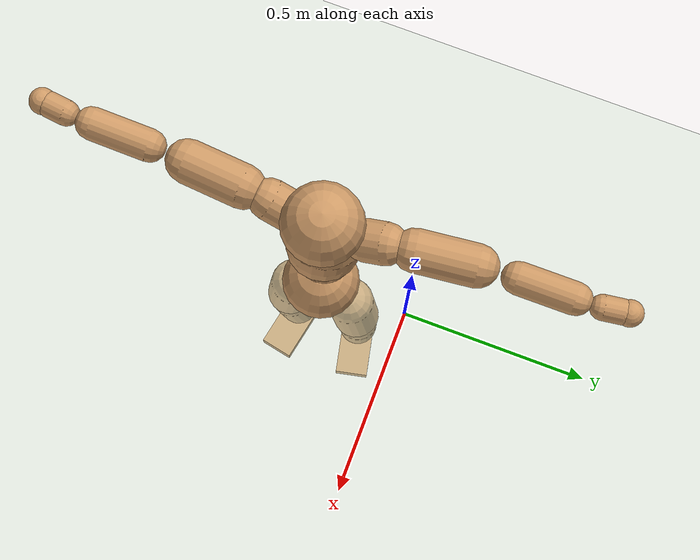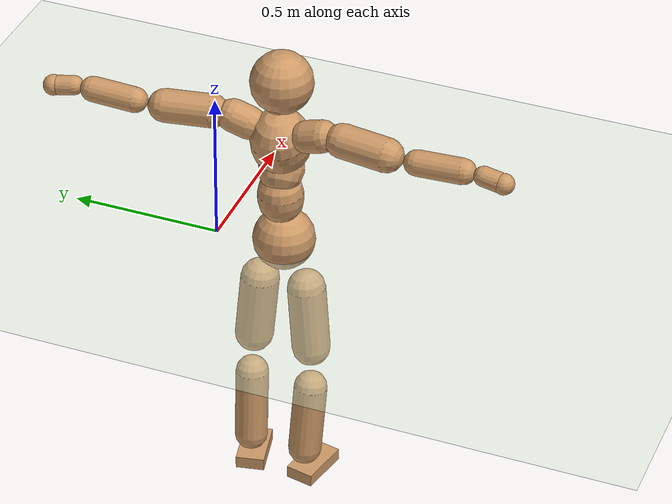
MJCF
<mujoco model="humanoid">
  <compiler coordinate="local"/>
  <default>
    <joint damping="0.0" armature="0.01" stiffness="0.0" limited="true"/>
    <geom conaffinity="1" condim="3" contype="7" margin="0.001" rgba="0.8 0.6 .4 1"/>
  </default>
  <asset>
    <texture type="skybox" builtin="gradient" rgb1=".4 .5 .6" rgb2="0 0 0" width="100" height="100"/>
    <texture builtin="flat" height="1278" mark="cross" markrgb="1 1 1" name="texgeom" random="0.01" rgb1="0.8 0.6 0.4" rgb2="0.8 0.6 0.4" type="cube" width="127"/>
    <texture builtin="checker" height="100" name="texplane" rgb1="0 0 0" rgb2="0.8 0.8 0.8" type="2d" width="100"/>
    <material name="MatPlane" reflectance="0.5" shininess="1" specular="1" texrepeat="60 60" texture="texplane"/>
    <material name="geom" texture="texgeom" texuniform="true"/>
  </asset>
  <worldbody>
    <light cutoff="100" diffuse="1 1 1" dir="-0 0 -1.3" directional="true" exponent="1" pos="0 0 1.3" specular=".1 .1 .1"/>
    <geom conaffinity="1" condim="3" name="floor" pos="0 0 0" rgba="0.8 0.9 0.8 1" size="100 100 .2" type="plane" material="MatPlane"/>
    <body name="Pelvis" pos="-0.0009 -0.2362 0.0377">
      <freejoint name="Pelvis"/>
      <geom type="sphere" contype="1" conaffinity="1" density="500" size="0.1028" pos="0.0000 0.0000 0.0000" name="Pelvis"/>
      <body name="L_Hip" pos="-0.0031 0.0757 -0.0974">
        <joint name="L_Hip_x" type="hinge" pos="0 0 0" axis="1 0 0" stiffness="800" damping="80" armature="0.02" range="-180.0000 180.0000"/>
        <joint name="L_Hip_y" type="hinge" pos="0 0 0" axis="0 1 0" stiffness="800" damping="80" armature="0.02" range="-180.0000 180.0000"/>
        <joint name="L_Hip_z" type="hinge" pos="0 0 0" axis="0 0 1" stiffness="800" damping="80" armature="0.02" range="-180.0000 180.0000"/>
        <geom type="capsule" contype="1" conaffinity="1" density="500" fromto="-0.0027 0.0058 -0.0747 -0.0108 0.0234 -0.2988" size="0.064" name="L_Hip"/>
        <body name="L_Knee" pos="-0.0135 0.0292 -0.3735">
          <joint name="L_Knee_x" type="hinge" pos="0 0 0" axis="1 0 0" stiffness="800" damping="80" armature="0.02" range="-180.0000 180.0000"/>
          <joint name="L_Knee_y" type="hinge" pos="0 0 0" axis="0 1 0" stiffness="800" damping="80" armature="0.02" range="-180.0000 180.0000"/>
          <joint name="L_Knee_z" type="hinge" pos="0 0 0" axis="0 0 1" stiffness="800" damping="80" armature="0.02" range="-180.0000 180.0000"/>
          <geom type="capsule" contype="1" conaffinity="1" density="500" fromto="-0.0094 -0.0024 -0.0799 -0.0374 -0.0097 -0.3195" size="0.0552" name="L_Knee"/>
          <body name="L_Ankle" pos="-0.0468 -0.0121 -0.3994">
            <joint name="L_Ankle_x" type="hinge" pos="0 0 0" axis="1 0 0" stiffness="800" damping="80" armature="0.02" range="-180.0000 180.0000"/>
            <joint name="L_Ankle_y" type="hinge" pos="0 0 0" axis="0 1 0" stiffness="800" damping="80" armature="0.02" range="-180.0000 180.0000"/>
            <joint name="L_Ankle_z" type="hinge" pos="0 0 0" axis="0 0 1" stiffness="800" damping="80" armature="0.02" range="-180.0000 180.0000"/>
            <geom type="box" contype="1" conaffinity="1" density="500" pos="0.0593 0.0126 -0.0287" size="0.0846 0.0479 0.0215" quat="0.9945 0.0000 0.0000 0.1047" name="L_Ankle"/>
            <body name="L_Toe" pos="0.1185 0.0252 -0.0574">
              <joint name="L_Toe_x" type="hinge" pos="0 0 0" axis="1 0 0" stiffness="500" damping="50" armature="0.02" range="-180.0000 180.0000"/>
              <joint name="L_Toe_y" type="hinge" pos="0 0 0" axis="0 1 0" stiffness="500" damping="50" armature="0.02" range="-180.0000 180.0000"/>
              <joint name="L_Toe_z" type="hinge" pos="0 0 0" axis="0 0 1" stiffness="500" damping="50" armature="0.02" range="-180.0000 180.0000"/>
              <geom type="box" contype="1" conaffinity="1" density="500" pos="0.0000 0.0000 0.0282" size="0.001 0.0024 0.001" quat="0.9938 0.0000 0.0000 0.1109" name="L_Toe"/>
            </body>
          </body>
        </body>
      </body>
      <body name="R_Hip" pos="0.0002 -0.0725 -0.0979">
        <joint name="R_Hip_x" type="hinge" pos="0 0 0" axis="1 0 0" stiffness="800" damping="80" armature="0.02" range="-180.0000 180.0000"/>
        <joint name="R_Hip_y" type="hinge" pos="0 0 0" axis="0 1 0" stiffness="800" damping="80" armature="0.02" range="-180.0000 180.0000"/>
        <joint name="R_Hip_z" type="hinge" pos="0 0 0" axis="0 0 1" stiffness="800" damping="80" armature="0.02" range="-180.0000 180.0000"/>
        <geom type="capsule" contype="1" conaffinity="1" density="500" fromto="-0.0031 -0.0072 -0.0759 -0.0123 -0.0287 -0.3036" size="0.0632" name="R_Hip"/>
        <body name="R_Knee" pos="-0.0154 -0.0358 -0.3795">
          <joint name="R_Knee_x" type="hinge" pos="0 0 0" axis="1 0 0" stiffness="800" damping="80" armature="0.02" range="-180.0000 180.0000"/>
          <joint name="R_Knee_y" type="hinge" pos="0 0 0" axis="0 1 0" stiffness="800" damping="80" armature="0.02" range="-180.0000 180.0000"/>
          <joint name="R_Knee_z" type="hinge" pos="0 0 0" axis="0 0 1" stiffness="800" damping="80" armature="0.02" range="-180.0000 180.0000"/>
          <geom type="capsule" contype="1" conaffinity="1" density="500" fromto="-0.0091 0.0028 -0.0800 -0.0364 0.0113 -0.3200" size="0.0553" name="R_Knee"/>
          <body name="R_Ankle" pos="-0.0455 0.0141 -0.4">
            <joint name="R_Ankle_x" type="hinge" pos="0 0 0" axis="1 0 0" stiffness="800" damping="80" armature="0.02" range="-180.0000 180.0000"/>
            <joint name="R_Ankle_y" type="hinge" pos="0 0 0" axis="0 1 0" stiffness="800" damping="80" armature="0.02" range="-180.0000 180.0000"/>
            <joint name="R_Ankle_z" type="hinge" pos="0 0 0" axis="0 0 1" stiffness="800" damping="80" armature="0.02" range="-180.0000 180.0000"/>
            <geom type="box" contype="1" conaffinity="1" density="500" pos="0.0612 -0.0124 -0.0244" size="0.0863 0.0478 0.0211" quat="0.9950 0.0000 0.0000 -0.0998" name="R_Ankle"/>
            <body name="R_Toe" pos="0.1224 -0.0248 -0.0488">
              <joint name="R_Toe_x" type="hinge" pos="0 0 0" axis="1 0 0" stiffness="500" damping="50" armature="0.02" range="-180.0000 180.0000"/>
              <joint name="R_Toe_y" type="hinge" pos="0 0 0" axis="0 1 0" stiffness="500" damping="50" armature="0.02" range="-180.0000 180.0000"/>
              <joint name="R_Toe_z" type="hinge" pos="0 0 0" axis="0 0 1" stiffness="500" damping="50" armature="0.02" range="-180.0000 180.0000"/>
              <geom type="box" contype="1" conaffinity="1" density="500" pos="0.0000 0.0000 0.0265" size="0.0009 0.0024 0.0012" quat="0.9959 0.0000 0.0000 -0.0906" name="R_Toe"/>
            </body>
          </body>
        </body>
      </body>
      <body name="Torso" pos="-0.0304 -0.0029 0.1142">
        <joint name="Torso_x" type="hinge" pos="0 0 0" axis="1 0 0" stiffness="1000" damping="100" armature="0.02" range="-180.0000 180.0000"/>
        <joint name="Torso_y" type="hinge" pos="0 0 0" axis="0 1 0" stiffness="1000" damping="100" armature="0.02" range="-180.0000 180.0000"/>
        <joint name="Torso_z" type="hinge" pos="0 0 0" axis="0 0 1" stiffness="1000" damping="100" armature="0.02" range="-180.0000 180.0000"/>
        <geom type="capsule" contype="1" conaffinity="1" density="500" fromto="-0.0025 0.0025 0.0834 -0.0016 0.0016 0.0556" size="0.074586" name="Torso"/>
        <body name="Spine" pos="-0.0041 0.0041 0.139">
          <joint name="Spine_x" type="hinge" pos="0 0 0" axis="1 0 0" stiffness="1000" damping="100" armature="0.02" range="-180.0000 180.0000"/>
          <joint name="Spine_y" type="hinge" pos="0 0 0" axis="0 1 0" stiffness="1000" damping="100" armature="0.02" range="-180.0000 180.0000"/>
          <joint name="Spine_z" type="hinge" pos="0 0 0" axis="0 0 1" stiffness="1000" damping="100" armature="0.02" range="-180.0000 180.0000"/>
          <geom type="capsule" contype="1" conaffinity="1" density="500" fromto="0.0209 0.0012 0.0321 0.0140 0.0008 0.0214" size="0.074214" name="Spine"/>
          <body name="Chest" pos="0.0349 0.002 0.0535">
            <joint name="Chest_x" type="hinge" pos="0 0 0" axis="1 0 0" stiffness="1000" damping="100" armature="0.02" range="-180.0000 180.0000"/>
            <joint name="Chest_y" type="hinge" pos="0 0 0" axis="0 1 0" stiffness="1000" damping="100" armature="0.02" range="-180.0000 180.0000"/>
            <joint name="Chest_z" type="hinge" pos="0 0 0" axis="0 0 1" stiffness="1000" damping="100" armature="0.02" range="-180.0000 180.0000"/>
            <geom type="capsule" contype="1" conaffinity="1" density="500" fromto="-0.0312 -0.0005 0.0969 -0.0208 -0.0004 0.0646" size="0.096627" name="Chest"/>
            <body name="Neck" pos="-0.0631 -0.0015 0.2276">
              <joint name="Neck_x" type="hinge" pos="0 0 0" axis="1 0 0" stiffness="500" damping="50" armature="0.02" range="-180.0000 180.0000"/>
              <joint name="Neck_y" type="hinge" pos="0 0 0" axis="0 1 0" stiffness="500" damping="50" armature="0.02" range="-180.0000 180.0000"/>
              <joint name="Neck_z" type="hinge" pos="0 0 0" axis="0 0 1" stiffness="500" damping="50" armature="0.02" range="-180.0000 180.0000"/>
              <geom type="capsule" contype="1" conaffinity="1" density="500" fromto="0.0099 0.0004 0.0124 0.0398 0.0016 0.0497" size="0.040362" name="Neck"/>
              <body name="Head" pos="0.0497 0.0019 0.0621">
                <joint name="Head_x" type="hinge" pos="0 0 0" axis="1 0 0" stiffness="500" damping="50" armature="0.02" range="-180.0000 180.0000"/>
                <joint name="Head_y" type="hinge" pos="0 0 0" axis="0 1 0" stiffness="500" damping="50" armature="0.02" range="-180.0000 180.0000"/>
                <joint name="Head_z" type="hinge" pos="0 0 0" axis="0 0 1" stiffness="500" damping="50" armature="0.02" range="-180.0000 180.0000"/>
                <geom type="sphere" contype="1" conaffinity="1" density="500" size="0.1018" pos="0.0000 0.0000 0.0000" name="Head"/>
              </body>
            </body>
            <body name="L_Thorax" pos="-0.044 0.0794 0.1294">
              <joint name="L_Thorax_x" type="hinge" pos="0 0 0" axis="1 0 0" stiffness="500" damping="50" armature="0.02" range="-180.0000 180.0000"/>
              <joint name="L_Thorax_y" type="hinge" pos="0 0 0" axis="0 1 0" stiffness="500" damping="50" armature="0.02" range="-180.0000 180.0000"/>
              <joint name="L_Thorax_z" type="hinge" pos="0 0 0" axis="0 0 1" stiffness="500" damping="50" armature="0.02" range="-180.0000 180.0000"/>
              <geom type="capsule" contype="1" conaffinity="1" density="500" fromto="-0.0017 0.0173 0.0061 -0.0069 0.0692 0.0246" size="0.0535" name="L_Thorax"/>
              <body name="L_Shoulder" pos="-0.0086 0.0865 0.0307">
                <joint name="L_Shoulder_x" type="hinge" pos="0 0 0" axis="1 0 0" stiffness="500" damping="50" armature="0.02" range="-720.0000 720.0000"/>
                <joint name="L_Shoulder_y" type="hinge" pos="0 0 0" axis="0 1 0" stiffness="500" damping="50" armature="0.02" range="-720.0000 720.0000"/>
                <joint name="L_Shoulder_z" type="hinge" pos="0 0 0" axis="0 0 1" stiffness="500" damping="50" armature="0.02" range="-720.0000 720.0000"/>
                <geom type="capsule" contype="1" conaffinity="1" density="500" fromto="-0.0060 0.0512 -0.0019 -0.0241 0.2048 -0.0075" size="0.0544" name="L_Shoulder"/>
                <body name="L_Elbow" pos="-0.0302 0.256 -0.0094">
                  <joint name="L_Elbow_x" type="hinge" pos="0 0 0" axis="1 0 0" stiffness="500" damping="50" armature="0.02" range="-720.0000 720.0000"/>
                  <joint name="L_Elbow_y" type="hinge" pos="0 0 0" axis="0 1 0" stiffness="500" damping="50" armature="0.02" range="-720.0000 720.0000"/>
                  <joint name="L_Elbow_z" type="hinge" pos="0 0 0" axis="0 0 1" stiffness="500" damping="50" armature="0.02" range="-720.0000 720.0000"/>
                  <geom type="capsule" contype="1" conaffinity="1" density="500" fromto="0.0003 0.0486 0.0018 0.0010 0.1945 0.0073" size="0.0414" name="L_Elbow"/>
                  <body name="L_Wrist" pos="0.0013 0.2431 0.0091">
                    <joint name="L_Wrist_x" type="hinge" pos="0 0 0" axis="1 0 0" stiffness="300" damping="30" armature="0.02" range="-180.0000 180.0000"/>
                    <joint name="L_Wrist_y" type="hinge" pos="0 0 0" axis="0 1 0" stiffness="300" damping="30" armature="0.02" range="-180.0000 180.0000"/>
                    <joint name="L_Wrist_z" type="hinge" pos="0 0 0" axis="0 0 1" stiffness="300" damping="30" armature="0.02" range="-180.0000 180.0000"/>
                    <geom type="capsule" contype="1" conaffinity="1" density="500" fromto="-0.0028 0.0168 -0.0020 -0.0111 0.0673 -0.0080" size="0.032" name="L_Wrist"/>
                    <body name="L_Hand" pos="-0.0139 0.0841 -0.01">
                      <joint name="L_Hand_x" type="hinge" pos="0 0 0" axis="1 0 0" stiffness="300" damping="30" armature="0.02" range="-180.0000 180.0000"/>
                      <joint name="L_Hand_y" type="hinge" pos="0 0 0" axis="0 1 0" stiffness="300" damping="30" armature="0.02" range="-180.0000 180.0000"/>
                      <joint name="L_Hand_z" type="hinge" pos="0 0 0" axis="0 0 1" stiffness="300" damping="30" armature="0.02" range="-180.0000 180.0000"/>
                      <geom type="sphere" contype="1" conaffinity="1" density="500" size="0.0340" pos="0.0000 0.0000 0.0000" name="L_Hand"/>
                    </body>
                  </body>
                </body>
              </body>
            </body>
            <body name="R_Thorax" pos="-0.0489 -0.0806 0.1275">
              <joint name="R_Thorax_x" type="hinge" pos="0 0 0" axis="1 0 0" stiffness="500" damping="50" armature="0.02" range="-180.0000 180.0000"/>
              <joint name="R_Thorax_y" type="hinge" pos="0 0 0" axis="0 1 0" stiffness="500" damping="50" armature="0.02" range="-180.0000 180.0000"/>
              <joint name="R_Thorax_z" type="hinge" pos="0 0 0" axis="0 0 1" stiffness="500" damping="50" armature="0.02" range="-180.0000 180.0000"/>
              <geom type="capsule" contype="1" conaffinity="1" density="500" fromto="-0.0018 -0.0181 0.0063 -0.0074 -0.0724 0.0252" size="0.0526" name="R_Thorax"/>
              <body name="R_Shoulder" pos="-0.0092 -0.0904 0.0315">
                <joint name="R_Shoulder_x" type="hinge" pos="0 0 0" axis="1 0 0" stiffness="500" damping="50" armature="0.02" range="-720.0000 720.0000"/>
                <joint name="R_Shoulder_y" type="hinge" pos="0 0 0" axis="0 1 0" stiffness="500" damping="50" armature="0.02" range="-720.0000 720.0000"/>
                <joint name="R_Shoulder_z" type="hinge" pos="0 0 0" axis="0 0 1" stiffness="500" damping="50" armature="0.02" range="-720.0000 720.0000"/>
                <geom type="capsule" contype="1" conaffinity="1" density="500" fromto="-0.0044 -0.0501 -0.0024 -0.0178 -0.2006 -0.0097" size="0.0557" name="R_Shoulder"/>
                <body name="R_Elbow" pos="-0.0222 -0.2507 -0.0121">
                  <joint name="R_Elbow_x" type="hinge" pos="0 0 0" axis="1 0 0" stiffness="500" damping="50" armature="0.02" range="-720.0000 720.0000"/>
                  <joint name="R_Elbow_y" type="hinge" pos="0 0 0" axis="0 1 0" stiffness="500" damping="50" armature="0.02" range="-720.0000 720.0000"/>
                  <joint name="R_Elbow_z" type="hinge" pos="0 0 0" axis="0 0 1" stiffness="500" damping="50" armature="0.02" range="-720.0000 720.0000"/>
                  <geom type="capsule" contype="1" conaffinity="1" density="500" fromto="-0.0004 -0.0500 0.0023 -0.0014 -0.2001 0.0091" size="0.0416" name="R_Elbow"/>
                  <body name="R_Wrist" pos="-0.0018 -0.2502 0.0113">
                    <joint name="R_Wrist_x" type="hinge" pos="0 0 0" axis="1 0 0" stiffness="300" damping="30" armature="0.02" range="-180.0000 180.0000"/>
                    <joint name="R_Wrist_y" type="hinge" pos="0 0 0" axis="0 1 0" stiffness="300" damping="30" armature="0.02" range="-180.0000 180.0000"/>
                    <joint name="R_Wrist_z" type="hinge" pos="0 0 0" axis="0 0 1" stiffness="300" damping="30" armature="0.02" range="-180.0000 180.0000"/>
                    <geom type="capsule" contype="1" conaffinity="1" density="500" fromto="-0.0022 -0.0168 -0.0015 -0.0088 -0.0673 -0.0059" size="0.0325" name="R_Wrist"/>
                    <body name="R_Hand" pos="-0.011 -0.0842 -0.0074">
                      <joint name="R_Hand_x" type="hinge" pos="0 0 0" axis="1 0 0" stiffness="300" damping="30" armature="0.02" range="-180.0000 180.0000"/>
                      <joint name="R_Hand_y" type="hinge" pos="0 0 0" axis="0 1 0" stiffness="300" damping="30" armature="0.02" range="-180.0000 180.0000"/>
                      <joint name="R_Hand_z" type="hinge" pos="0 0 0" axis="0 0 1" stiffness="300" damping="30" armature="0.02" range="-180.0000 180.0000"/>
                      <geom type="sphere" contype="1" conaffinity="1" density="500" size="0.0339" pos="0.0000 0.0000 0.0000" name="R_Hand"/>
                    </body>
                  </body>
                </body>
              </body>
            </body>
          </body>
        </body>
      </body>
    </body>
  </worldbody>
  <actuator>
    <motor name="L_Hip_x" joint="L_Hip_x" gear="500"/>
    <motor name="L_Hip_y" joint="L_Hip_y" gear="500"/>
    <motor name="L_Hip_z" joint="L_Hip_z" gear="500"/>
    <motor name="L_Knee_x" joint="L_Knee_x" gear="500"/>
    <motor name="L_Knee_y" joint="L_Knee_y" gear="500"/>
    <motor name="L_Knee_z" joint="L_Knee_z" gear="500"/>
    <motor name="L_Ankle_x" joint="L_Ankle_x" gear="500"/>
    <motor name="L_Ankle_y" joint="L_Ankle_y" gear="500"/>
    <motor name="L_Ankle_z" joint="L_Ankle_z" gear="500"/>
    <motor name="L_Toe_x" joint="L_Toe_x" gear="500"/>
    <motor name="L_Toe_y" joint="L_Toe_y" gear="500"/>
    <motor name="L_Toe_z" joint="L_Toe_z" gear="500"/>
    <motor name="R_Hip_x" joint="R_Hip_x" gear="500"/>
    <motor name="R_Hip_y" joint="R_Hip_y" gear="500"/>
    <motor name="R_Hip_z" joint="R_Hip_z" gear="500"/>
    <motor name="R_Knee_x" joint="R_Knee_x" gear="500"/>
    <motor name="R_Knee_y" joint="R_Knee_y" gear="500"/>
    <motor name="R_Knee_z" joint="R_Knee_z" gear="500"/>
    <motor name="R_Ankle_x" joint="R_Ankle_x" gear="500"/>
    <motor name="R_Ankle_y" joint="R_Ankle_y" gear="500"/>
    <motor name="R_Ankle_z" joint="R_Ankle_z" gear="500"/>
    <motor name="R_Toe_x" joint="R_Toe_x" gear="500"/>
    <motor name="R_Toe_y" joint="R_Toe_y" gear="500"/>
    <motor name="R_Toe_z" joint="R_Toe_z" gear="500"/>
    <motor name="Torso_x" joint="Torso_x" gear="500"/>
    <motor name="Torso_y" joint="Torso_y" gear="500"/>
    <motor name="Torso_z" joint="Torso_z" gear="500"/>
    <motor name="Spine_x" joint="Spine_x" gear="500"/>
    <motor name="Spine_y" joint="Spine_y" gear="500"/>
    <motor name="Spine_z" joint="Spine_z" gear="500"/>
    <motor name="Chest_x" joint="Chest_x" gear="500"/>
    <motor name="Chest_y" joint="Chest_y" gear="500"/>
    <motor name="Chest_z" joint="Chest_z" gear="500"/>
    <motor name="Neck_x" joint="Neck_x" gear="500"/>
    <motor name="Neck_y" joint="Neck_y" gear="500"/>
    <motor name="Neck_z" joint="Neck_z" gear="500"/>
    <motor name="Head_x" joint="Head_x" gear="500"/>
    <motor name="Head_y" joint="Head_y" gear="500"/>
    <motor name="Head_z" joint="Head_z" gear="500"/>
    <motor name="L_Thorax_x" joint="L_Thorax_x" gear="500"/>
    <motor name="L_Thorax_y" joint="L_Thorax_y" gear="500"/>
    <motor name="L_Thorax_z" joint="L_Thorax_z" gear="500"/>
    <motor name="L_Shoulder_x" joint="L_Shoulder_x" gear="500"/>
    <motor name="L_Shoulder_y" joint="L_Shoulder_y" gear="500"/>
    <motor name="L_Shoulder_z" joint="L_Shoulder_z" gear="500"/>
    <motor name="L_Elbow_x" joint="L_Elbow_x" gear="500"/>
    <motor name="L_Elbow_y" joint="L_Elbow_y" gear="500"/>
    <motor name="L_Elbow_z" joint="L_Elbow_z" gear="500"/>
    <motor name="L_Wrist_x" joint="L_Wrist_x" gear="500"/>
    <motor name="L_Wrist_y" joint="L_Wrist_y" gear="500"/>
    <motor name="L_Wrist_z" joint="L_Wrist_z" gear="500"/>
    <motor name="L_Hand_x" joint="L_Hand_x" gear="500"/>
    <motor name="L_Hand_y" joint="L_Hand_y" gear="500"/>
    <motor name="L_Hand_z" joint="L_Hand_z" gear="500"/>
    <motor name="R_Thorax_x" joint="R_Thorax_x" gear="500"/>
    <motor name="R_Thorax_y" joint="R_Thorax_y" gear="500"/>
    <motor name="R_Thorax_z" joint="R_Thorax_z" gear="500"/>
    <motor name="R_Shoulder_x" joint="R_Shoulder_x" gear="500"/>
    <motor name="R_Shoulder_y" joint="R_Shoulder_y" gear="500"/>
    <motor name="R_Shoulder_z" joint="R_Shoulder_z" gear="500"/>
    <motor name="R_Elbow_x" joint="R_Elbow_x" gear="500"/>
    <motor name="R_Elbow_y" joint="R_Elbow_y" gear="500"/>
    <motor name="R_Elbow_z" joint="R_Elbow_z" gear="500"/>
    <motor name="R_Wrist_x" joint="R_Wrist_x" gear="500"/>
    <motor name="R_Wrist_y" joint="R_Wrist_y" gear="500"/>
    <motor name="R_Wrist_z" joint="R_Wrist_z" gear="500"/>
    <motor name="R_Hand_x" joint="R_Hand_x" gear="500"/>
    <motor name="R_Hand_y" joint="R_Hand_y" gear="500"/>
    <motor name="R_Hand_z" joint="R_Hand_z" gear="500"/>
  </actuator>
  <contact>
    <exclude body1="Torso" body2="Chest"/>
    <exclude body1="Head" body2="Chest"/>
    <exclude body1="R_Knee" body2="R_Toe"/>
    <exclude body1="R_Knee" body2="L_Ankle"/>
    <exclude body1="R_Knee" body2="L_Toe"/>
    <exclude body1="L_Knee" body2="L_Toe"/>
    <exclude body1="L_Knee" body2="R_Ankle"/>
    <exclude body1="L_Knee" body2="R_Toe"/>
    <exclude body1="L_Shoulder" body2="Chest"/>
    <exclude body1="R_Shoulder" body2="Chest"/>
  </contact>
  <sensor/>
  <size njmax="700" nconmax="700"/>
</mujoco>
